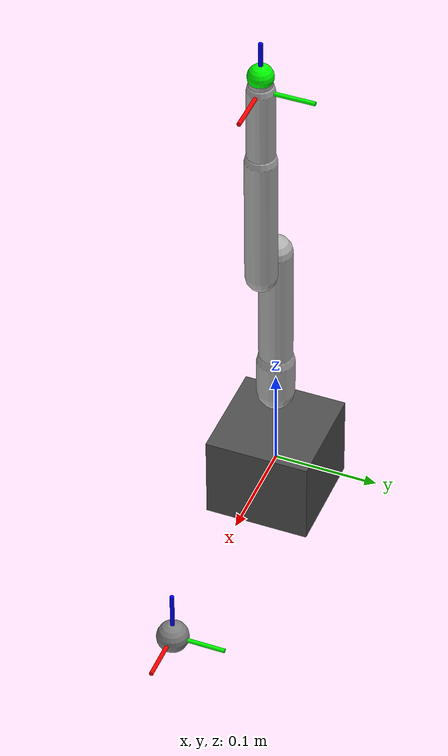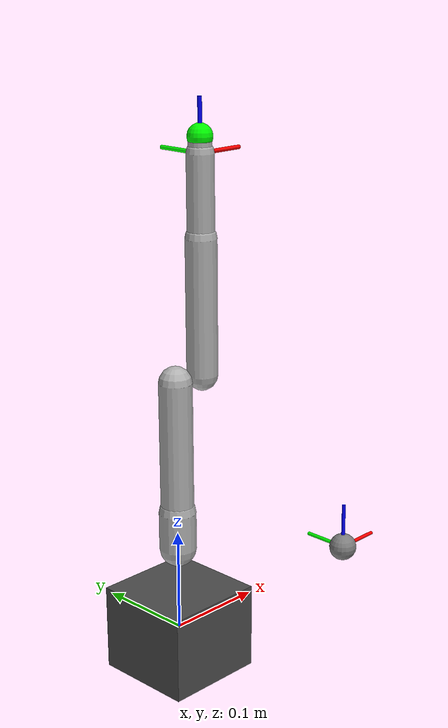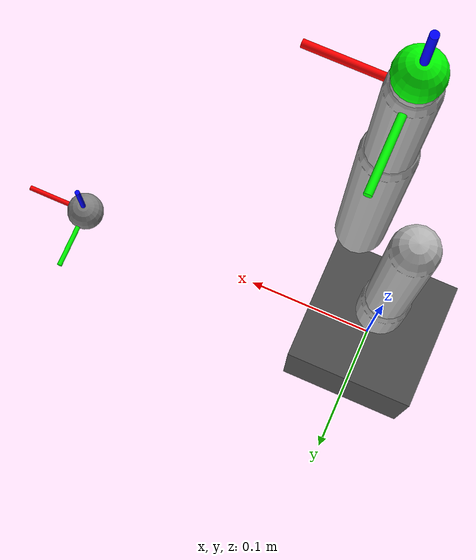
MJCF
<mujoco model="car_arm">
  <compiler angle="degree"/>
  <option timestep="0.002" gravity="0 0 -9.81"/>

  <default>
    <joint damping="0.5" armature="0.1"/>
    <geom type="capsule" rgba="0.7 0.7 0.7 1"/>
    <motor gear="14.7" ctrllimited="true" ctrlrange="-1 1"/>
  </default>

  <worldbody>
    <body name="base" pos="0 0 0">
      <geom type="box" size="0.05 0.05 0.0425" rgba="0.3 0.3 0.3 1"/>

      <!-- 관절1: 수평 회전 (베이스 위) -->
      <body name="link1" pos="0 0 0.085">
        <joint name="joint1_yaw" type="hinge" axis="0 0 1" range="-120 120"/>
        <geom fromto="0 0 0 0 0 0.037" size="0.018"/>

        <!-- 관절2: 수직 회전 (어깨) -->
        <body name="link2" pos="0 0 0.037">
          <joint name="joint2_shoulder" type="hinge" axis="0 1 0" range="-90 90"/>
          <geom fromto="0 0 0 0 0 0.130" size="0.016"/>

          <!-- 관절3: 수직 회전 (팔꿈치1) - 0~180도 -->
          <body name="link3" pos="0.035 0 0.130">
            <joint name="joint3_elbow1" type="hinge" axis="0 1 0" range="0 180"/>
            <geom fromto="0 0 0 0 0 0.130" size="0.015"/>

            <!-- 관절4: 수직 회전 (팔꿈치2) -->
            <body name="link4" pos="0 0 0.130">
              <joint name="joint4_elbow2" type="hinge" axis="0 1 0" range="-120 120"/>
              <geom fromto="0 0 0 0 0 0.077" size="0.013"/>

              <!-- 관절5: 수평 회전 (손목) -->
              <body name="link5" pos="0 0 0.077">
                <joint name="joint5_wrist" type="hinge" axis="0 0 1" range="-120 120"/>
                <geom fromto="0 0 0 0 0 0.015" size="0.011"/>
                <site name="end_effector" pos="0 0 0.015" size="0.012" rgba="0 1 0 1"/>

                <geom type="cylinder" fromto="0 0 0 0.05 0 0" size="0.002" rgba="1 0 0 1" contype="0" conaffinity="0"/> <!-- X축 (Red) -->
                <geom type="cylinder" fromto="0 0 0 0 0.05 0" size="0.002" rgba="0 1 0 1" contype="0" conaffinity="0"/> <!-- Y축 (Green) -->
                <geom type="cylinder" fromto="0 0 0 0 0 0.05" size="0.002" rgba="0 0 1 1" contype="0" conaffinity="0"/> <!-- Z축 (Blue) -->
              </body>
            </body>
          </body>
        </body>
      </body>
    </body>

    <!-- 목표 위치 마커 -->
    <body name="target" pos="0.25 0 0">
      <geom type="sphere" size="0.015" rgba="1 0 0 0.7" contype="0" conaffinity="0"/>
      <site name="target_site" size="0.015"/>

      <geom type="cylinder" fromto="0 0 0 0.05 0 0" size="0.002" rgba="1 0 0 1" contype="0" conaffinity="0"/> <!-- X축 (Red) -->
      <geom type="cylinder" fromto="0 0 0 0 0.05 0" size="0.002" rgba="0 1 0 1" contype="0" conaffinity="0"/> <!-- Y축 (Green) -->
      <geom type="cylinder" fromto="0 0 0 0 0 0.05" size="0.002" rgba="0 0 1 1" contype="0" conaffinity="0"/> <!-- Z축 (Blue) -->
    </body>
  </worldbody>

  <actuator>
    <motor name="act1" joint="joint1_yaw"/>
    <motor name="act2" joint="joint2_shoulder"/>
    <motor name="act3" joint="joint3_elbow1"/>
    <motor name="act4" joint="joint4_elbow2"/>
    <motor name="act5" joint="joint5_wrist"/>
  </actuator>

</mujoco>
